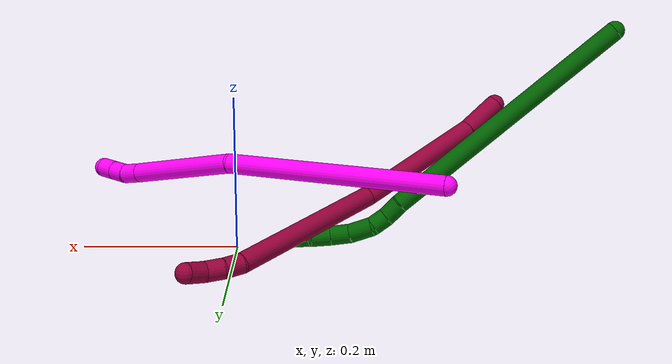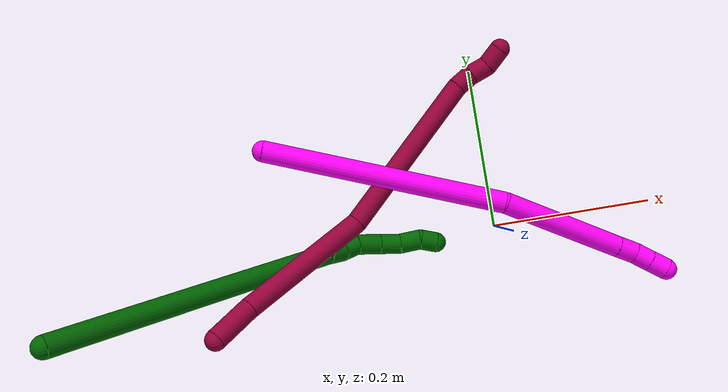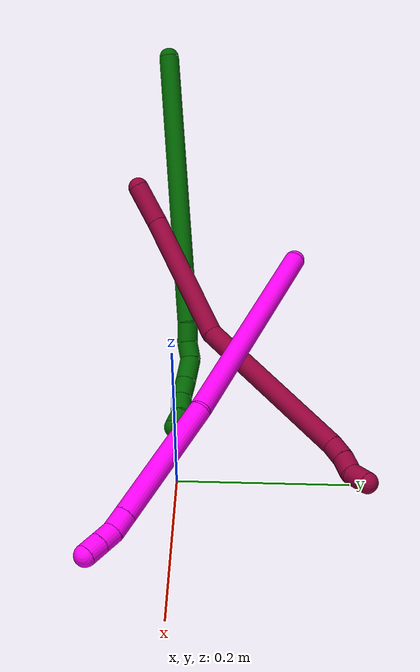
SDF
<sdf version="1.7">
 <world name="default">
  <model name="6">
   <static>0</static>
   <link name="6">
    <collision name="collision-cylinder-e_1_1_4">
     <pose>0.000176 -0.008731 -0.174792 3.09168 0.001003 0.040196</pose>
     <geometry><cylinder><radius>0.0125</radius><length>0.35002</length></cylinder></geometry>
     <surface>
      <friction><ode><mu>1.16</mu><mu2>1.16</mu2><slip1>0</slip1><slip2>0</slip2></ode></friction>
      <contact><ode><kp>1e+06</kp><kd>1</kd><max_vel>0</max_vel><min_depth>0.001</min_depth></ode></contact>
     </surface>
    </collision>
    <visual name="visual-cylinder-e_1_1_4">
     <pose>0.000176 -0.008731 -0.174792 3.09168 0.001003 0.040196</pose>
     <geometry><cylinder><radius>0.0125</radius><length>0.35002</length></cylinder></geometry>
     <material><ambient>0 0.392157 0.003922 1</ambient></material>
    </visual>
    <collision name="collision-cylinder-e_2_4_5">
     <pose>3.5e-05 -0.019892 -0.361702 2.94373 -0.025591 -0.256435</pose>
     <geometry><cylinder><radius>0.0125</radius><length>0.024728</length></cylinder></geometry>
     <surface>
      <friction><ode><mu>1.16</mu><mu2>1.16</mu2><slip1>0</slip1><slip2>0</slip2></ode></friction>
      <contact><ode><kp>1e+06</kp><kd>1</kd><max_vel>0</max_vel><min_depth>0.001</min_depth></ode></contact>
     </surface>
    </collision>
    <visual name="visual-cylinder-e_2_4_5">
     <pose>3.5e-05 -0.019892 -0.361702 2.94373 -0.025591 -0.256435</pose>
     <geometry><cylinder><radius>0.0125</radius><length>0.024728</length></cylinder></geometry>
     <material><ambient>0 0.392157 0.003922 1</ambient></material>
    </visual>
    <collision name="collision-cylinder-e_3_5_6">
     <pose>-0.000378 -0.021191 -0.384582 -3.03689 -0.008894 0.169325</pose>
     <geometry><cylinder><radius>0.0125</radius><length>0.021642</length></cylinder></geometry>
     <surface>
      <friction><ode><mu>1.16</mu><mu2>1.16</mu2><slip1>0</slip1><slip2>0</slip2></ode></friction>
      <contact><ode><kp>1e+06</kp><kd>1</kd><max_vel>0</max_vel><min_depth>0.001</min_depth></ode></contact>
     </surface>
    </collision>
    <visual name="visual-cylinder-e_3_5_6">
     <pose>-0.000378 -0.021191 -0.384582 -3.03689 -0.008894 0.169325</pose>
     <geometry><cylinder><radius>0.0125</radius><length>0.021642</length></cylinder></geometry>
     <material><ambient>0 0.392157 0.003922 1</ambient></material>
    </visual>
    <collision name="collision-cylinder-e_4_6_7">
     <pose>0.005368 -0.020359 -0.409531 3.12055 0.39051 3.03531</pose>
     <geometry><cylinder><radius>0.0125</radius><length>0.030692</length></cylinder></geometry>
     <surface>
      <friction><ode><mu>1.16</mu><mu2>1.16</mu2><slip1>0</slip1><slip2>0</slip2></ode></friction>
      <contact><ode><kp>1e+06</kp><kd>1</kd><max_vel>0</max_vel><min_depth>0.001</min_depth></ode></contact>
     </surface>
    </collision>
    <visual name="visual-cylinder-e_4_6_7">
     <pose>0.005368 -0.020359 -0.409531 3.12055 0.39051 3.03531</pose>
     <geometry><cylinder><radius>0.0125</radius><length>0.030692</length></cylinder></geometry>
     <material><ambient>0 0.392157 0.003922 1</ambient></material>
    </visual>
    <collision name="collision-cylinder-e_5_7_8">
     <pose>0.017834 -0.019226 -0.434943 -3.01477 0.529693 -2.68166</pose>
     <geometry><cylinder><radius>0.0125</radius><length>0.026223</length></cylinder></geometry>
     <surface>
      <friction><ode><mu>1.16</mu><mu2>1.16</mu2><slip1>0</slip1><slip2>0</slip2></ode></friction>
      <contact><ode><kp>1e+06</kp><kd>1</kd><max_vel>0</max_vel><min_depth>0.001</min_depth></ode></contact>
     </surface>
    </collision>
    <visual name="visual-cylinder-e_5_7_8">
     <pose>0.017834 -0.019226 -0.434943 -3.01477 0.529693 -2.68166</pose>
     <geometry><cylinder><radius>0.0125</radius><length>0.026223</length></cylinder></geometry>
     <material><ambient>0 0.392157 0.003922 1</ambient></material>
    </visual>
    <collision name="collision-cylinder-e_6_8_9">
     <pose>0.030282 -0.013435 -0.457076 -2.76134 0.460141 -1.76595</pose>
     <geometry><cylinder><radius>0.0125</radius><length>0.026224</length></cylinder></geometry>
     <surface>
      <friction><ode><mu>1.16</mu><mu2>1.16</mu2><slip1>0</slip1><slip2>0</slip2></ode></friction>
      <contact><ode><kp>1e+06</kp><kd>1</kd><max_vel>0</max_vel><min_depth>0.001</min_depth></ode></contact>
     </surface>
    </collision>
    <visual name="visual-cylinder-e_6_8_9">
     <pose>0.030282 -0.013435 -0.457076 -2.76134 0.460141 -1.76595</pose>
     <geometry><cylinder><radius>0.0125</radius><length>0.026224</length></cylinder></geometry>
     <material><ambient>0 0.392157 0.003922 1</ambient></material>
    </visual>
    <collision name="collision-cylinder-e_7_9_2">
     <pose>0.042564 -0.009224 -0.475924 3.12272 0.682897 3.08851</pose>
     <geometry><cylinder><radius>0.0125</radius><length>0.020471</length></cylinder></geometry>
     <surface>
      <friction><ode><mu>1.16</mu><mu2>1.16</mu2><slip1>0</slip1><slip2>0</slip2></ode></friction>
      <contact><ode><kp>1e+06</kp><kd>1</kd><max_vel>0</max_vel><min_depth>0.001</min_depth></ode></contact>
     </surface>
    </collision>
    <visual name="visual-cylinder-e_7_9_2">
     <pose>0.042564 -0.009224 -0.475924 3.12272 0.682897 3.08851</pose>
     <geometry><cylinder><radius>0.0125</radius><length>0.020471</length></cylinder></geometry>
     <material><ambient>0 0.392157 0.003922 1</ambient></material>
    </visual>
    <collision name="collision-sphere-2">
     <pose>0.049023 -0.009374 -0.483862 0 -0 0</pose>
     <geometry><sphere><radius>0.0125</radius></sphere></geometry>
     <surface>
      <friction><ode><mu>1.16</mu><mu2>1.16</mu2><slip1>0</slip1><slip2>0</slip2></ode></friction>
      <contact><ode><kp>1e+06</kp><kd>1</kd><max_vel>0</max_vel><min_depth>0.001</min_depth></ode></contact>
     </surface>
    </collision>
    <visual name="visual-sphere-2">
     <pose>0.049023 -0.009374 -0.483862 0 -0 0</pose>
     <geometry><sphere><radius>0.0125</radius></sphere></geometry>
     <material><ambient>0 0.392157 0.003922 1</ambient></material>
    </visual>
    <collision name="collision-sphere-9">
     <pose>0.036104 -0.009074 -0.467985 0 -0 0</pose>
     <geometry><sphere><radius>0.0125</radius></sphere></geometry>
     <surface>
      <friction><ode><mu>1.16</mu><mu2>1.16</mu2><slip1>0</slip1><slip2>0</slip2></ode></friction>
      <contact><ode><kp>1e+06</kp><kd>1</kd><max_vel>0</max_vel><min_depth>0.001</min_depth></ode></contact>
     </surface>
    </collision>
    <visual name="visual-sphere-9">
     <pose>0.036104 -0.009074 -0.467985 0 -0 0</pose>
     <geometry><sphere><radius>0.0125</radius></sphere></geometry>
     <material><ambient>0 0.392157 0.003922 1</ambient></material>
    </visual>
    <collision name="collision-sphere-4">
     <pose>0.000351 -0.017463 -0.349584 0 -0 0</pose>
     <geometry><sphere><radius>0.0125</radius></sphere></geometry>
     <surface>
      <friction><ode><mu>1.16</mu><mu2>1.16</mu2><slip1>0</slip1><slip2>0</slip2></ode></friction>
      <contact><ode><kp>1e+06</kp><kd>1</kd><max_vel>0</max_vel><min_depth>0.001</min_depth></ode></contact>
     </surface>
    </collision>
    <visual name="visual-sphere-4">
     <pose>0.000351 -0.017463 -0.349584 0 -0 0</pose>
     <geometry><sphere><radius>0.0125</radius></sphere></geometry>
     <material><ambient>0 0.392157 0.003922 1</ambient></material>
    </visual>
    <collision name="collision-sphere-1">
     <geometry><sphere><radius>0.0125</radius></sphere></geometry>
     <surface>
      <friction><ode><mu>1.16</mu><mu2>1.16</mu2><slip1>0</slip1><slip2>0</slip2></ode></friction>
      <contact><ode><kp>1e+06</kp><kd>1</kd><max_vel>0</max_vel><min_depth>0.001</min_depth></ode></contact>
     </surface>
    </collision>
    <visual name="visual-sphere-1">
     <geometry><sphere><radius>0.0125</radius></sphere></geometry>
     <material><ambient>0 0.392157 0.003922 1</ambient></material>
    </visual>
    <collision name="collision-sphere-8">
     <pose>0.024459 -0.017795 -0.446167 0 -0 0</pose>
     <geometry><sphere><radius>0.0125</radius></sphere></geometry>
     <surface>
      <friction><ode><mu>1.16</mu><mu2>1.16</mu2><slip1>0</slip1><slip2>0</slip2></ode></friction>
      <contact><ode><kp>1e+06</kp><kd>1</kd><max_vel>0</max_vel><min_depth>0.001</min_depth></ode></contact>
     </surface>
    </collision>
    <visual name="visual-sphere-8">
     <pose>0.024459 -0.017795 -0.446167 0 -0 0</pose>
     <geometry><sphere><radius>0.0125</radius></sphere></geometry>
     <material><ambient>0 0.392157 0.003922 1</ambient></material>
    </visual>
    <collision name="collision-sphere-5">
     <pose>-0.000282 -0.022322 -0.373821 0 -0 0</pose>
     <geometry><sphere><radius>0.0125</radius></sphere></geometry>
     <surface>
      <friction><ode><mu>1.16</mu><mu2>1.16</mu2><slip1>0</slip1><slip2>0</slip2></ode></friction>
      <contact><ode><kp>1e+06</kp><kd>1</kd><max_vel>0</max_vel><min_depth>0.001</min_depth></ode></contact>
     </surface>
    </collision>
    <visual name="visual-sphere-5">
     <pose>-0.000282 -0.022322 -0.373821 0 -0 0</pose>
     <geometry><sphere><radius>0.0125</radius></sphere></geometry>
     <material><ambient>0 0.392157 0.003922 1</ambient></material>
    </visual>
    <collision name="collision-sphere-6">
     <pose>-0.000474 -0.02006 -0.395343 0 -0 0</pose>
     <geometry><sphere><radius>0.0125</radius></sphere></geometry>
     <surface>
      <friction><ode><mu>1.16</mu><mu2>1.16</mu2><slip1>0</slip1><slip2>0</slip2></ode></friction>
      <contact><ode><kp>1e+06</kp><kd>1</kd><max_vel>0</max_vel><min_depth>0.001</min_depth></ode></contact>
     </surface>
    </collision>
    <visual name="visual-sphere-6">
     <pose>-0.000474 -0.02006 -0.395343 0 -0 0</pose>
     <geometry><sphere><radius>0.0125</radius></sphere></geometry>
     <material><ambient>0 0.392157 0.003922 1</ambient></material>
    </visual>
    <collision name="collision-sphere-7">
     <pose>0.011209 -0.020657 -0.423719 0 -0 0</pose>
     <geometry><sphere><radius>0.0125</radius></sphere></geometry>
     <surface>
      <friction><ode><mu>1.16</mu><mu2>1.16</mu2><slip1>0</slip1><slip2>0</slip2></ode></friction>
      <contact><ode><kp>1e+06</kp><kd>1</kd><max_vel>0</max_vel><min_depth>0.001</min_depth></ode></contact>
     </surface>
    </collision>
    <visual name="visual-sphere-7">
     <pose>0.011209 -0.020657 -0.423719 0 -0 0</pose>
     <geometry><sphere><radius>0.0125</radius></sphere></geometry>
     <material><ambient>0 0.392157 0.003922 1</ambient></material>
    </visual>
    <inertial>
     <pose>0.004704 -0.011354 -0.248304 0 -0 0</pose>
     <mass>0.5</mass>
     <inertia>
      <ixx>0.003726</ixx>
      <ixy>0</ixy>
      <ixz>0</ixz>
      <iyy>-0.003435</iyy>
      <iyz>0</iyz>
      <izz>0.000132</izz>
     </inertia>
    </inertial>
   </link>
   <pose>-0.481536 -0.032417 0.280934 0.795611 -0.547006 -0.930974</pose>
  </model>
  <model name="8">
   <static>0</static>
   <link name="8">
    <collision name="collision-cylinder-e_1_1_4">
     <pose>0.016213 0.016975 0.01187 -0.960559 0.66413 -0.355502</pose>
     <geometry><cylinder><radius>0.0125</radius><length>0.052608</length></cylinder></geometry>
     <surface>
      <friction><ode><mu>1.16</mu><mu2>1.16</mu2><slip1>0</slip1><slip2>0</slip2></ode></friction>
      <contact><ode><kp>1e+06</kp><kd>1</kd><max_vel>0</max_vel><min_depth>0.001</min_depth></ode></contact>
     </surface>
    </collision>
    <visual name="visual-cylinder-e_1_1_4">
     <pose>0.016213 0.016975 0.01187 -0.960559 0.66413 -0.355502</pose>
     <geometry><cylinder><radius>0.0125</radius><length>0.052608</length></cylinder></geometry>
     <material><ambient>0.584314 0 0.227451 1</ambient></material>
    </visual>
    <collision name="collision-cylinder-e_2_4_5">
     <pose>0.079389 0.094862 0.052931 -1.12391 0.60755 -0.389767</pose>
     <geometry><cylinder><radius>0.0125</radius><length>0.164535</length></cylinder></geometry>
     <surface>
      <friction><ode><mu>1.16</mu><mu2>1.16</mu2><slip1>0</slip1><slip2>0</slip2></ode></friction>
      <contact><ode><kp>1e+06</kp><kd>1</kd><max_vel>0</max_vel><min_depth>0.001</min_depth></ode></contact>
     </surface>
    </collision>
    <visual name="visual-cylinder-e_2_4_5">
     <pose>0.079389 0.094862 0.052931 -1.12391 0.60755 -0.389767</pose>
     <geometry><cylinder><radius>0.0125</radius><length>0.164535</length></cylinder></geometry>
     <material><ambient>0.584314 0 0.227451 1</ambient></material>
    </visual>
    <collision name="collision-cylinder-e_3_5_6">
     <pose>0.207386 0.222142 0.091051 -1.43705 0.88017 -0.781222</pose>
     <geometry><cylinder><radius>0.0125</radius><length>0.210245</length></cylinder></geometry>
     <surface>
      <friction><ode><mu>1.16</mu><mu2>1.16</mu2><slip1>0</slip1><slip2>0</slip2></ode></friction>
      <contact><ode><kp>1e+06</kp><kd>1</kd><max_vel>0</max_vel><min_depth>0.001</min_depth></ode></contact>
     </surface>
    </collision>
    <visual name="visual-cylinder-e_3_5_6">
     <pose>0.207386 0.222142 0.091051 -1.43705 0.88017 -0.781222</pose>
     <geometry><cylinder><radius>0.0125</radius><length>0.210245</length></cylinder></geometry>
     <material><ambient>0.584314 0 0.227451 1</ambient></material>
    </visual>
    <collision name="collision-cylinder-e_4_6_7">
     <pose>0.295497 0.297581 0.100073 -1.5606 0.662505 -0.656258</pose>
     <geometry><cylinder><radius>0.0125</radius><length>0.023014</length></cylinder></geometry>
     <surface>
      <friction><ode><mu>1.16</mu><mu2>1.16</mu2><slip1>0</slip1><slip2>0</slip2></ode></friction>
      <contact><ode><kp>1e+06</kp><kd>1</kd><max_vel>0</max_vel><min_depth>0.001</min_depth></ode></contact>
     </surface>
    </collision>
    <visual name="visual-cylinder-e_4_6_7">
     <pose>0.295497 0.297581 0.100073 -1.5606 0.662505 -0.656258</pose>
     <geometry><cylinder><radius>0.0125</radius><length>0.023014</length></cylinder></geometry>
     <material><ambient>0.584314 0 0.227451 1</ambient></material>
    </visual>
    <collision name="collision-cylinder-e_5_7_8">
     <pose>0.307863 0.317285 0.100229 -1.56486 0.461575 -0.458938</pose>
     <geometry><cylinder><radius>0.0125</radius><length>0.023749</length></cylinder></geometry>
     <surface>
      <friction><ode><mu>1.16</mu><mu2>1.16</mu2><slip1>0</slip1><slip2>0</slip2></ode></friction>
      <contact><ode><kp>1e+06</kp><kd>1</kd><max_vel>0</max_vel><min_depth>0.001</min_depth></ode></contact>
     </surface>
    </collision>
    <visual name="visual-cylinder-e_5_7_8">
     <pose>0.307863 0.317285 0.100229 -1.56486 0.461575 -0.458938</pose>
     <geometry><cylinder><radius>0.0125</radius><length>0.023749</length></cylinder></geometry>
     <material><ambient>0.584314 0 0.227451 1</ambient></material>
    </visual>
    <collision name="collision-cylinder-e_6_8_2">
     <pose>0.322308 0.336294 0.096683 -1.97756 0.787295 -1.12601</pose>
     <geometry><cylinder><radius>0.0125</radius><length>0.025849</length></cylinder></geometry>
     <surface>
      <friction><ode><mu>1.16</mu><mu2>1.16</mu2><slip1>0</slip1><slip2>0</slip2></ode></friction>
      <contact><ode><kp>1e+06</kp><kd>1</kd><max_vel>0</max_vel><min_depth>0.001</min_depth></ode></contact>
     </surface>
    </collision>
    <visual name="visual-cylinder-e_6_8_2">
     <pose>0.322308 0.336294 0.096683 -1.97756 0.787295 -1.12601</pose>
     <geometry><cylinder><radius>0.0125</radius><length>0.025849</length></cylinder></geometry>
     <material><ambient>0.584314 0 0.227451 1</ambient></material>
    </visual>
    <collision name="collision-sphere-2">
     <pose>0.331464 0.344671 0.093074 0 -0 0</pose>
     <geometry><sphere><radius>0.0125</radius></sphere></geometry>
     <surface>
      <friction><ode><mu>1.16</mu><mu2>1.16</mu2><slip1>0</slip1><slip2>0</slip2></ode></friction>
      <contact><ode><kp>1e+06</kp><kd>1</kd><max_vel>0</max_vel><min_depth>0.001</min_depth></ode></contact>
     </surface>
    </collision>
    <visual name="visual-sphere-2">
     <pose>0.331464 0.344671 0.093074 0 -0 0</pose>
     <geometry><sphere><radius>0.0125</radius></sphere></geometry>
     <material><ambient>0.584314 0 0.227451 1</ambient></material>
    </visual>
    <collision name="collision-sphere-4">
     <pose>0.032426 0.03395 0.02374 0 -0 0</pose>
     <geometry><sphere><radius>0.0125</radius></sphere></geometry>
     <surface>
      <friction><ode><mu>1.16</mu><mu2>1.16</mu2><slip1>0</slip1><slip2>0</slip2></ode></friction>
      <contact><ode><kp>1e+06</kp><kd>1</kd><max_vel>0</max_vel><min_depth>0.001</min_depth></ode></contact>
     </surface>
    </collision>
    <visual name="visual-sphere-4">
     <pose>0.032426 0.03395 0.02374 0 -0 0</pose>
     <geometry><sphere><radius>0.0125</radius></sphere></geometry>
     <material><ambient>0.584314 0 0.227451 1</ambient></material>
    </visual>
    <collision name="collision-sphere-1">
     <geometry><sphere><radius>0.0125</radius></sphere></geometry>
     <surface>
      <friction><ode><mu>1.16</mu><mu2>1.16</mu2><slip1>0</slip1><slip2>0</slip2></ode></friction>
      <contact><ode><kp>1e+06</kp><kd>1</kd><max_vel>0</max_vel><min_depth>0.001</min_depth></ode></contact>
     </surface>
    </collision>
    <visual name="visual-sphere-1">
     <geometry><sphere><radius>0.0125</radius></sphere></geometry>
     <material><ambient>0.584314 0 0.227451 1</ambient></material>
    </visual>
    <collision name="collision-sphere-8">
     <pose>0.313152 0.327916 0.100292 0 -0 0</pose>
     <geometry><sphere><radius>0.0125</radius></sphere></geometry>
     <surface>
      <friction><ode><mu>1.16</mu><mu2>1.16</mu2><slip1>0</slip1><slip2>0</slip2></ode></friction>
      <contact><ode><kp>1e+06</kp><kd>1</kd><max_vel>0</max_vel><min_depth>0.001</min_depth></ode></contact>
     </surface>
    </collision>
    <visual name="visual-sphere-8">
     <pose>0.313152 0.327916 0.100292 0 -0 0</pose>
     <geometry><sphere><radius>0.0125</radius></sphere></geometry>
     <material><ambient>0.584314 0 0.227451 1</ambient></material>
    </visual>
    <collision name="collision-sphere-5">
     <pose>0.126352 0.155775 0.082121 0 -0 0</pose>
     <geometry><sphere><radius>0.0125</radius></sphere></geometry>
     <surface>
      <friction><ode><mu>1.16</mu><mu2>1.16</mu2><slip1>0</slip1><slip2>0</slip2></ode></friction>
      <contact><ode><kp>1e+06</kp><kd>1</kd><max_vel>0</max_vel><min_depth>0.001</min_depth></ode></contact>
     </surface>
    </collision>
    <visual name="visual-sphere-5">
     <pose>0.126352 0.155775 0.082121 0 -0 0</pose>
     <geometry><sphere><radius>0.0125</radius></sphere></geometry>
     <material><ambient>0.584314 0 0.227451 1</ambient></material>
    </visual>
    <collision name="collision-sphere-6">
     <pose>0.288419 0.288509 0.099981 0 -0 0</pose>
     <geometry><sphere><radius>0.0125</radius></sphere></geometry>
     <surface>
      <friction><ode><mu>1.16</mu><mu2>1.16</mu2><slip1>0</slip1><slip2>0</slip2></ode></friction>
      <contact><ode><kp>1e+06</kp><kd>1</kd><max_vel>0</max_vel><min_depth>0.001</min_depth></ode></contact>
     </surface>
    </collision>
    <visual name="visual-sphere-6">
     <pose>0.288419 0.288509 0.099981 0 -0 0</pose>
     <geometry><sphere><radius>0.0125</radius></sphere></geometry>
     <material><ambient>0.584314 0 0.227451 1</ambient></material>
    </visual>
    <collision name="collision-sphere-7">
     <pose>0.302575 0.306653 0.100166 0 -0 0</pose>
     <geometry><sphere><radius>0.0125</radius></sphere></geometry>
     <surface>
      <friction><ode><mu>1.16</mu><mu2>1.16</mu2><slip1>0</slip1><slip2>0</slip2></ode></friction>
      <contact><ode><kp>1e+06</kp><kd>1</kd><max_vel>0</max_vel><min_depth>0.001</min_depth></ode></contact>
     </surface>
    </collision>
    <visual name="visual-sphere-7">
     <pose>0.302575 0.306653 0.100166 0 -0 0</pose>
     <geometry><sphere><radius>0.0125</radius></sphere></geometry>
     <material><ambient>0.584314 0 0.227451 1</ambient></material>
    </visual>
    <inertial>
     <pose>0.159921 0.172564 0.071318 0 -0 0</pose>
     <mass>0.5</mass>
     <inertia>
      <ixx>0.000205</ixx>
      <ixy>0</ixy>
      <ixz>0</ixz>
      <iyy>0.000283</iyy>
      <iyz>0</iyz>
      <izz>-0.001612</izz>
     </inertia>
    </inertial>
   </link>
   <pose>-0.336603 -0.064869 0.177732 3.13186 0.128868 1.47185</pose>
  </model>
  <model name="10">
   <static>0</static>
   <link name="10">
    <collision name="collision-cylinder-e_1_1_4">
     <pose>0.109843 -0.016097 -0.089312 2.96328 0.880286 2.76642</pose>
     <geometry><cylinder><radius>0.0125</radius><length>0.284965</length></cylinder></geometry>
     <surface>
      <friction><ode><mu>1.16</mu><mu2>1.16</mu2><slip1>0</slip1><slip2>0</slip2></ode></friction>
      <contact><ode><kp>1e+06</kp><kd>1</kd><max_vel>0</max_vel><min_depth>0.001</min_depth></ode></contact>
     </surface>
    </collision>
    <visual name="visual-cylinder-e_1_1_4">
     <pose>0.109843 -0.016097 -0.089312 2.96328 0.880286 2.76642</pose>
     <geometry><cylinder><radius>0.0125</radius><length>0.284965</length></cylinder></geometry>
     <material><ambient>1 0 0.964706 1</ambient></material>
    </visual>
    <collision name="collision-cylinder-e_2_4_5">
     <pose>0.287206 -0.031876 -0.210642 -3.13167 1.128 -3.1259</pose>
     <geometry><cylinder><radius>0.0125</radius><length>0.149455</length></cylinder></geometry>
     <surface>
      <friction><ode><mu>1.16</mu><mu2>1.16</mu2><slip1>0</slip1><slip2>0</slip2></ode></friction>
      <contact><ode><kp>1e+06</kp><kd>1</kd><max_vel>0</max_vel><min_depth>0.001</min_depth></ode></contact>
     </surface>
    </collision>
    <visual name="visual-cylinder-e_2_4_5">
     <pose>0.287206 -0.031876 -0.210642 -3.13167 1.128 -3.1259</pose>
     <geometry><cylinder><radius>0.0125</radius><length>0.149455</length></cylinder></geometry>
     <material><ambient>1 0 0.964706 1</ambient></material>
    </visual>
    <collision name="collision-cylinder-e_3_5_6">
     <pose>0.36531 -0.03157 -0.24808 3.13935 1.09742 3.13792</pose>
     <geometry><cylinder><radius>0.0125</radius><length>0.023784</length></cylinder></geometry>
     <surface>
      <friction><ode><mu>1.16</mu><mu2>1.16</mu2><slip1>0</slip1><slip2>0</slip2></ode></friction>
      <contact><ode><kp>1e+06</kp><kd>1</kd><max_vel>0</max_vel><min_depth>0.001</min_depth></ode></contact>
     </surface>
    </collision>
    <visual name="visual-cylinder-e_3_5_6">
     <pose>0.36531 -0.03157 -0.24808 3.13935 1.09742 3.13792</pose>
     <geometry><cylinder><radius>0.0125</radius><length>0.023784</length></cylinder></geometry>
     <material><ambient>1 0 0.964706 1</ambient></material>
    </visual>
    <collision name="collision-cylinder-e_4_6_7">
     <pose>0.383735 -0.029991 -0.259958 -2.90003 0.867396 -2.62896</pose>
     <geometry><cylinder><radius>0.0125</radius><length>0.020561</length></cylinder></geometry>
     <surface>
      <friction><ode><mu>1.16</mu><mu2>1.16</mu2><slip1>0</slip1><slip2>0</slip2></ode></friction>
      <contact><ode><kp>1e+06</kp><kd>1</kd><max_vel>0</max_vel><min_depth>0.001</min_depth></ode></contact>
     </surface>
    </collision>
    <visual name="visual-cylinder-e_4_6_7">
     <pose>0.383735 -0.029991 -0.259958 -2.90003 0.867396 -2.62896</pose>
     <geometry><cylinder><radius>0.0125</radius><length>0.020561</length></cylinder></geometry>
     <material><ambient>1 0 0.964706 1</ambient></material>
    </visual>
    <collision name="collision-cylinder-e_5_7_2">
     <pose>0.399652 -0.026734 -0.273102 -2.89739 0.864346 -2.62155</pose>
     <geometry><cylinder><radius>0.0125</radius><length>0.021235</length></cylinder></geometry>
     <surface>
      <friction><ode><mu>1.16</mu><mu2>1.16</mu2><slip1>0</slip1><slip2>0</slip2></ode></friction>
      <contact><ode><kp>1e+06</kp><kd>1</kd><max_vel>0</max_vel><min_depth>0.001</min_depth></ode></contact>
     </surface>
    </collision>
    <visual name="visual-cylinder-e_5_7_2">
     <pose>0.399652 -0.026734 -0.273102 -2.89739 0.864346 -2.62155</pose>
     <geometry><cylinder><radius>0.0125</radius><length>0.021235</length></cylinder></geometry>
     <material><ambient>1 0 0.964706 1</ambient></material>
    </visual>
    <collision name="collision-sphere-2">
     <pose>0.407729 -0.025068 -0.27979 0 -0 0</pose>
     <geometry><sphere><radius>0.0125</radius></sphere></geometry>
     <surface>
      <friction><ode><mu>1.16</mu><mu2>1.16</mu2><slip1>0</slip1><slip2>0</slip2></ode></friction>
      <contact><ode><kp>1e+06</kp><kd>1</kd><max_vel>0</max_vel><min_depth>0.001</min_depth></ode></contact>
     </surface>
    </collision>
    <visual name="visual-sphere-2">
     <pose>0.407729 -0.025068 -0.27979 0 -0 0</pose>
     <geometry><sphere><radius>0.0125</radius></sphere></geometry>
     <material><ambient>1 0 0.964706 1</ambient></material>
    </visual>
    <collision name="collision-sphere-7">
     <pose>0.391576 -0.028401 -0.266414 0 -0 0</pose>
     <geometry><sphere><radius>0.0125</radius></sphere></geometry>
     <surface>
      <friction><ode><mu>1.16</mu><mu2>1.16</mu2><slip1>0</slip1><slip2>0</slip2></ode></friction>
      <contact><ode><kp>1e+06</kp><kd>1</kd><max_vel>0</max_vel><min_depth>0.001</min_depth></ode></contact>
     </surface>
    </collision>
    <visual name="visual-sphere-7">
     <pose>0.391576 -0.028401 -0.266414 0 -0 0</pose>
     <geometry><sphere><radius>0.0125</radius></sphere></geometry>
     <material><ambient>1 0 0.964706 1</ambient></material>
    </visual>
    <collision name="collision-sphere-6">
     <pose>0.375895 -0.031582 -0.253502 0 -0 0</pose>
     <geometry><sphere><radius>0.0125</radius></sphere></geometry>
     <surface>
      <friction><ode><mu>1.16</mu><mu2>1.16</mu2><slip1>0</slip1><slip2>0</slip2></ode></friction>
      <contact><ode><kp>1e+06</kp><kd>1</kd><max_vel>0</max_vel><min_depth>0.001</min_depth></ode></contact>
     </surface>
    </collision>
    <visual name="visual-sphere-6">
     <pose>0.375895 -0.031582 -0.253502 0 -0 0</pose>
     <geometry><sphere><radius>0.0125</radius></sphere></geometry>
     <material><ambient>1 0 0.964706 1</ambient></material>
    </visual>
    <collision name="collision-sphere-5">
     <pose>0.354726 -0.031558 -0.242659 0 -0 0</pose>
     <geometry><sphere><radius>0.0125</radius></sphere></geometry>
     <surface>
      <friction><ode><mu>1.16</mu><mu2>1.16</mu2><slip1>0</slip1><slip2>0</slip2></ode></friction>
      <contact><ode><kp>1e+06</kp><kd>1</kd><max_vel>0</max_vel><min_depth>0.001</min_depth></ode></contact>
     </surface>
    </collision>
    <visual name="visual-sphere-5">
     <pose>0.354726 -0.031558 -0.242659 0 -0 0</pose>
     <geometry><sphere><radius>0.0125</radius></sphere></geometry>
     <material><ambient>1 0 0.964706 1</ambient></material>
    </visual>
    <collision name="collision-sphere-1">
     <geometry><sphere><radius>0.0125</radius></sphere></geometry>
     <surface>
      <friction><ode><mu>1.16</mu><mu2>1.16</mu2><slip1>0</slip1><slip2>0</slip2></ode></friction>
      <contact><ode><kp>1e+06</kp><kd>1</kd><max_vel>0</max_vel><min_depth>0.001</min_depth></ode></contact>
     </surface>
    </collision>
    <visual name="visual-sphere-1">
     <geometry><sphere><radius>0.0125</radius></sphere></geometry>
     <material><ambient>1 0 0.964706 1</ambient></material>
    </visual>
    <collision name="collision-sphere-4">
     <pose>0.219685 -0.032193 -0.178625 0 -0 0</pose>
     <geometry><sphere><radius>0.0125</radius></sphere></geometry>
     <surface>
      <friction><ode><mu>1.16</mu><mu2>1.16</mu2><slip1>0</slip1><slip2>0</slip2></ode></friction>
      <contact><ode><kp>1e+06</kp><kd>1</kd><max_vel>0</max_vel><min_depth>0.001</min_depth></ode></contact>
     </surface>
    </collision>
    <visual name="visual-sphere-4">
     <pose>0.219685 -0.032193 -0.178625 0 -0 0</pose>
     <geometry><sphere><radius>0.0125</radius></sphere></geometry>
     <material><ambient>1 0 0.964706 1</ambient></material>
    </visual>
    <inertial>
     <pose>0.198582 -0.022572 -0.147954 0 -0 0</pose>
     <mass>0.5</mass>
     <inertia>
      <ixx>-0.000792</ixx>
      <ixy>0</ixy>
      <ixz>0</ixz>
      <iyy>0.00261</iyy>
      <iyz>0</iyz>
      <izz>-0.001561</izz>
     </inertia>
    </inertial>
   </link>
   <pose>-0.260233 0.133437 0.125062 2.94096 0.664179 -0.610755</pose>
  </model>
 </world>
</sdf>
